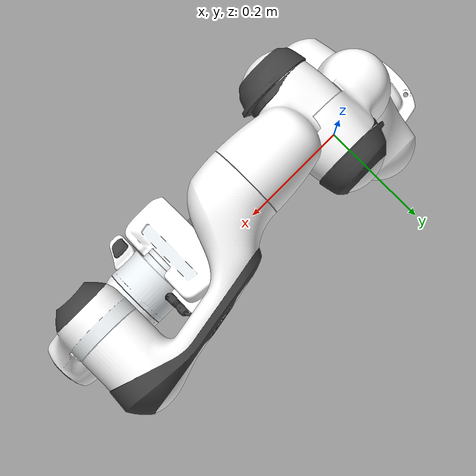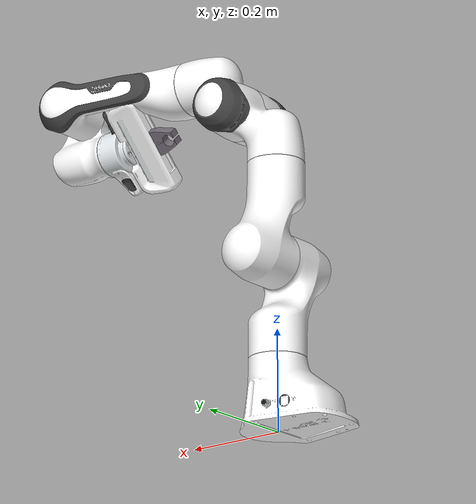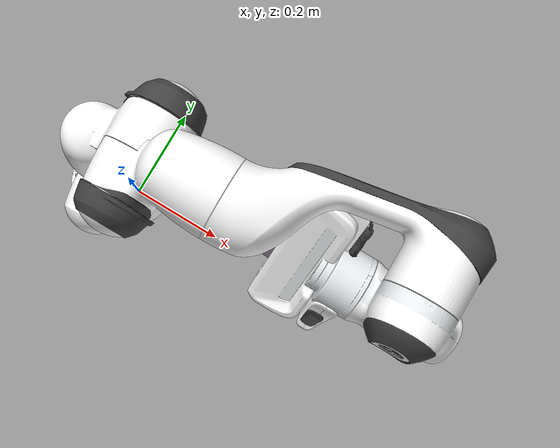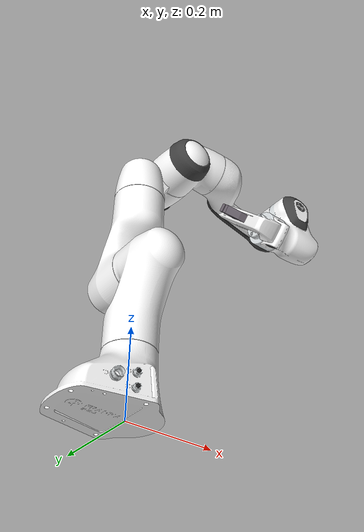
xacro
<?xml version="1.0" encoding="utf-8"?>
<robot xmlns:xacro="http://www.ros.org/wiki/xacro" name="panda">
  <xacro:arg name="robot_name" default="panda"/>

  <xacro:include filename="$(find robot_description)/robots/panda_arm.xacro"/>
  <xacro:include filename="$(find robot_description)/robots/hand.xacro"/>
  <xacro:include filename="$(find robot_description)/robots/panda.gazebo.xacro"/>
  <xacro:include filename="$(find robot_description)/robots/panda.transmission.xacro"/>
  <!--xacro:include filename="$(find robot_description)/robots/cam_plugin.gazebo" /-->

  <xacro:panda_arm />
  <xacro:hand ns="panda" rpy="0 0 ${-pi/4}" connected_to="panda_link8"/>

  <xacro:panda_gazebo robot_name="$(arg robot_name)" />
  <xacro:panda_transmission robot_name="$(arg robot_name)" />
</robot>

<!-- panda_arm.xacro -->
<robot xmlns:xacro="http://www.ros.org/wiki/xacro" name="panda">
  <xacro:macro name="panda_arm" params="arm_id:='panda' description_pkg:='robot_description' connected_to:='' xyz:='0 0 0' rpy:='0 0 0'">
    <xacro:unless value="${not connected_to}">
      <joint name="${arm_id}_joint_${connected_to}" type="fixed">
        <parent link="${connected_to}"/>
        <child link="${arm_id}_link0"/>
        <origin rpy="${rpy}" xyz="${xyz}"/>
      </joint>
    </xacro:unless>

    <xacro:property name="joint_damping" value="1.0"/>
    <xacro:property name="height3" value="0.0" /> <!-- Link 3 -->
    <xacro:property name="camera_link" value="0.05" /> <!-- Size of square 'camera' box -->
    <xacro:property name="axel_offset" value="0.05" /> <!-- Space btw top of beam and the each joint -->

    <link name="world" />

    <joint name="fixed_base" type="fixed">
      <parent link="world" />
      <child link="${arm_id}_link0" />
      <origin xyz="0.0 0.0 0.0" rpy="0.0 0.0 0.0" />
      <dynamics damping="${joint_damping}"/>
    </joint>

    <link name="${arm_id}_link0">
      <visual>
        <geometry>
          <mesh filename="package://${description_pkg}/meshes/visual/link0.dae"/>
        </geometry>
      </visual>
      <collision>
        <geometry>
          <mesh filename="package://${description_pkg}/meshes/collision/link0.stl"/>
        </geometry>
      </collision>
      <inertial>
        <origin xyz="0 0 0" rpy="0 0 0"/>
        <mass value="3.06"/>
        <inertia ixx="0.3" ixy="0.0" ixz="0.0" iyy="0.3" iyz="0.0" izz="0.3"/>
      </inertial>
    </link>
    <link name="${arm_id}_link1">
      <visual>
        <geometry>
          <mesh filename="package://${description_pkg}/meshes/visual/link1.dae"/>
        </geometry>
      </visual>
      <collision>
        <geometry>
          <mesh filename="package://${description_pkg}/meshes/collision/link1.stl"/>
        </geometry>
      </collision>
      <inertial>
        <origin xyz="0 0 0" rpy="0 0 0"/>
        <mass value="2.34"/>
        <inertia ixx="0.3" ixy="0.0" ixz="0.0" iyy="0.3" iyz="0.0" izz="0.3"/>
      </inertial>
    </link>
    <joint name="${arm_id}_joint1" type="revolute">
      <safety_controller k_position="100.0" k_velocity="40.0" soft_lower_limit="-2.8973" soft_upper_limit="2.8973"/>
      <origin rpy="0 0 0" xyz="0 0 0.333"/>
      <parent link="${arm_id}_link0"/>
      <child link="${arm_id}_link1"/>
      <axis xyz="0 0 1"/>
      <limit effort="87" lower="-2.8973" upper="2.8973" velocity="2.1750"/>
      <dynamics damping="${joint_damping}"/>
    </joint>
    <link name="${arm_id}_link2">
      <visual>
        <geometry>
          <mesh filename="package://${description_pkg}/meshes/visual/link2.dae"/>
        </geometry>
      </visual>
      <collision>
        <geometry>
          <mesh filename="package://${description_pkg}/meshes/collision/link2.stl"/>
        </geometry>
      </collision>
      <inertial>
        <origin xyz="0 0 0" rpy="0 0 0"/>
        <mass value="2.36"/>
        <inertia ixx="0.3" ixy="0.0" ixz="0.0" iyy="0.3" iyz="0.0" izz="0.3"/>
      </inertial>
    </link>
    <joint name="${arm_id}_joint2" type="revolute">
      <safety_controller k_position="100.0" k_velocity="40.0" soft_lower_limit="-1.7628" soft_upper_limit="1.7628"/>
      <origin rpy="${-pi/2} 0 0" xyz="0 0 0"/>
      <parent link="${arm_id}_link1"/>
      <child link="${arm_id}_link2"/>
      <axis xyz="0 0 1"/>
      <limit effort="87" lower="-1.7628" upper="1.7628" velocity="2.1750"/>
      <dynamics damping="${joint_damping}"/>
    </joint>
    <link name="${arm_id}_link3">
      <visual>
        <geometry>
          <mesh filename="package://${description_pkg}/meshes/visual/link3.dae"/>
        </geometry>
      </visual>
      <collision>
        <geometry>
          <mesh filename="package://${description_pkg}/meshes/collision/link3.stl"/>
        </geometry>
      </collision>
      <inertial>
        <origin xyz="0 0 0" rpy="0 0 0"/>
        <mass value="2.38"/>
        <inertia ixx="0.3" ixy="0.0" ixz="0.0" iyy="0.3" iyz="0.0" izz="0.3"/>
      </inertial>
    </link>
    <joint name="${arm_id}_joint3" type="revolute">
      <safety_controller k_position="100.0" k_velocity="40.0" soft_lower_limit="-2.8973" soft_upper_limit="2.8973"/>
      <origin rpy="${pi/2} 0 0" xyz="0 -0.316 0"/>
      <parent link="${arm_id}_link2"/>
      <child link="${arm_id}_link3"/>
      <axis xyz="0 0 1"/>
      <limit effort="87" lower="-2.8973" upper="2.8973" velocity="2.1750"/>
      <dynamics damping="${joint_damping}"/>
    </joint>
    <link name="${arm_id}_link4">
      <visual>
        <geometry>
          <mesh filename="package://${description_pkg}/meshes/visual/link4.dae"/>
        </geometry>
      </visual>
      <collision>
        <geometry>
          <mesh filename="package://${description_pkg}/meshes/collision/link4.stl"/>
        </geometry>
      </collision>
      <inertial>
        <origin xyz="0 0 0" rpy="0 0 0"/>
        <mass value="2.43"/>
        <inertia ixx="0.3" ixy="0.0" ixz="0.0" iyy="0.3" iyz="0.0" izz="0.3"/>
      </inertial>
    </link>
    <joint name="${arm_id}_joint4" type="revolute">
      <safety_controller k_position="100.0" k_velocity="40.0" soft_lower_limit="-3.0718" soft_upper_limit="-0.0698"/>
      <origin rpy="${pi/2} 0 0" xyz="0.0825 0 0"/>
      <parent link="${arm_id}_link3"/>
      <child link="${arm_id}_link4"/>
      <axis xyz="0 0 1"/>
      <limit effort="87" lower="-3.0718" upper="-0.0698" velocity="2.1750"/>
      <dynamics damping="${joint_damping}"/>
    </joint>
    <link name="${arm_id}_link5">
      <visual>
        <geometry>
          <mesh filename="package://${description_pkg}/meshes/visual/link5.dae"/>
        </geometry>
      </visual>
      <collision>
        <geometry>
          <mesh filename="package://${description_pkg}/meshes/collision/link5.stl"/>
        </geometry>
      </collision>
      <inertial>
        <origin xyz="0 0 0" rpy="0 0 0"/>
        <mass value="3.5"/>
        <inertia ixx="0.3" ixy="0.0" ixz="0.0" iyy="0.3" iyz="0.0" izz="0.3"/>
      </inertial>
    </link>
    <joint name="${arm_id}_joint5" type="revolute">
      <safety_controller k_position="100.0" k_velocity="40.0" soft_lower_limit="-2.8973" soft_upper_limit="2.8973"/>
      <origin rpy="${-pi/2} 0 0" xyz="-0.0825 0.384 0"/>
      <parent link="${arm_id}_link4"/>
      <child link="${arm_id}_link5"/>
      <axis xyz="0 0 1"/>
      <limit effort="12" lower="-2.8973" upper="2.8973" velocity="2.6100"/>
      <dynamics damping="${joint_damping}"/>
    </joint>
    <link name="${arm_id}_link6">
      <visual>
        <geometry>
          <mesh filename="package://${description_pkg}/meshes/visual/link6.dae"/>
        </geometry>
      </visual>
      <collision>
        <geometry>
          <mesh filename="package://${description_pkg}/meshes/collision/link6.stl"/>
        </geometry>
      </collision>
      <inertial>
        <origin xyz="0 0 0" rpy="0 0 0"/>
        <mass value="1.47"/>
        <inertia ixx="0.3" ixy="0.0" ixz="0.0" iyy="0.3" iyz="0.0" izz="0.3"/>
      </inertial>
    </link>
    <joint name="${arm_id}_joint6" type="revolute">
      <safety_controller k_position="100.0" k_velocity="40.0" soft_lower_limit="-0.0175" soft_upper_limit="3.7525"/>
      <origin rpy="${pi/2} 0 0" xyz="0 0 0"/>
      <parent link="${arm_id}_link5"/>
      <child link="${arm_id}_link6"/>
      <axis xyz="0 0 1"/>
      <limit effort="12" lower="-0.0175" upper="3.7525" velocity="2.6100"/>
      <dynamics damping="${joint_damping}"/>
    </joint>
    <link name="${arm_id}_link7">
      <visual>
        <geometry>
          <mesh filename="package://${description_pkg}/meshes/visual/link7.dae"/>
        </geometry>
      </visual>
      <collision>
        <geometry>
          <mesh filename="package://${description_pkg}/meshes/collision/link7.stl"/>
        </geometry>
      </collision>
      <inertial>
        <origin xyz="0 0 0" rpy="0 0 0"/>
        <mass value="0.45"/>
        <inertia ixx="0.3" ixy="0.0" ixz="0.0" iyy="0.3" iyz="0.0" izz="0.3"/>
      </inertial>
    </link>
    <joint name="${arm_id}_joint7" type="revolute">
      <safety_controller k_position="100.0" k_velocity="40.0" soft_lower_limit="-2.8973" soft_upper_limit="2.8973"/>
      <origin rpy="${pi/2} 0 0" xyz="0.088 0 0"/>
      <parent link="${arm_id}_link6"/>
      <child link="${arm_id}_link7"/>
      <axis xyz="0 0 1"/>
      <limit effort="12" lower="-2.8973" upper="2.8973" velocity="2.6100"/>
      <dynamics damping="${joint_damping}"/>
    </joint>
    <link name="${arm_id}_link8">
      <inertial>
        <origin xyz="0 0 0" rpy="0 0 0"/>
        <mass value="0.0"/>
        <inertia ixx="0.3" ixy="0.0" ixz="0.0" iyy="0.3" iyz="0.0" izz="0.3"/>
      </inertial>
    </link>
    <joint name="${arm_id}_joint8" type="fixed">
      <origin rpy="0 0 0" xyz="0 0 0.107"/>
      <parent link="${arm_id}_link7"/>
      <child link="${arm_id}_link8"/>
      <axis xyz="0 0 0"/>
    </joint>

  </xacro:macro>
</robot>

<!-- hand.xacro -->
<robot xmlns:xacro="http://www.ros.org/wiki/xacro" name="hand">
  <xacro:macro name="hand" params="connected_to:='' ns:='' rpy:='0 0 0' xyz:='0 0 0' ">
    <xacro:unless value="${connected_to == ''}">
      <joint name="${ns}_hand_joint" type="fixed">
        <parent link="${connected_to}"/>
        <child link="${ns}_hand"/>
        <origin xyz="${xyz}" rpy="${rpy}"/>
      </joint>
    </xacro:unless>
    <link name="${ns}_hand">
      <visual>
        <geometry>
          <mesh filename="package://robot_description/meshes/visual/hand.dae"/>
        </geometry>
      </visual>
      <collision>
        <geometry>
          <mesh filename="package://robot_description/meshes/collision/hand.stl"/>
        </geometry>
      </collision>
      <inertial>
        <origin xyz="0 0 0" rpy="0 0 0"/>
        <mass value="0.68"/>
        <inertia ixx="0.1" ixy="0.0" ixz="0.0" iyy="0.1" iyz="0.0" izz="0.1"/>
      </inertial>
    </link>
    <link name="${ns}_leftfinger">
      <visual>
        <geometry>
          <mesh filename="package://robot_description/meshes/visual/finger.dae"/>
        </geometry>
      </visual>
      <collision>
        <geometry>
          <mesh filename="package://robot_description/meshes/collision/finger.stl"/>
        </geometry>
      </collision>
      <inertial>
        <origin xyz="0 0 0" rpy="0 0 0"/>
        <mass value="0.01"/>
        <inertia ixx="0.1" ixy="0.0" ixz="0.0" iyy="0.1" iyz="0.0" izz="0.1"/>
      </inertial>
    </link>
    <link name="${ns}_rightfinger">
      <visual>
        <origin xyz="0 0 0" rpy="0 0 ${pi}"/>
        <geometry>
          <mesh filename="package://robot_description/meshes/visual/finger.dae"/>
        </geometry>
      </visual>
      <collision>
        <origin xyz="0 0 0" rpy="0 0 ${pi}"/>
        <geometry>
          <mesh filename="package://robot_description/meshes/collision/finger.stl"/>
        </geometry>
      </collision>
      <inertial>
        <origin xyz="0 0 0" rpy="0 0 0"/>
        <mass value="0.01"/>
        <inertia ixx="0.1" ixy="0.0" ixz="0.0" iyy="0.1" iyz="0.0" izz="0.1"/>
      </inertial>
    </link>
    <joint name="${ns}_finger_joint1" type="prismatic">
      <parent link="${ns}_hand"/>
      <child link="${ns}_leftfinger"/>
      <origin xyz="0 0 0.0584" rpy="0 0 0"/>
      <axis xyz="0 1 0"/>
      <limit effort="20" lower="0.0" upper="0.04" velocity="0.2"/>
    </joint>
    <joint name="${ns}_finger_joint2" type="prismatic">
      <parent link="${ns}_hand"/>
      <child link="${ns}_rightfinger"/>
      <origin xyz="0 0 0.0584" rpy="0 0 0"/>
      <axis xyz="0 -1 0"/>
      <limit effort="20" lower="0.0" upper="0.04" velocity="0.2"/>
      <mimic joint="${ns}_finger_joint1" />
    </joint>
  </xacro:macro>
</robot>
